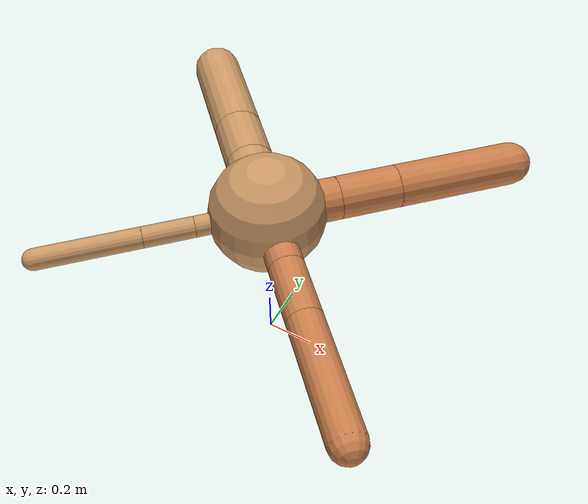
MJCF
<?xml version="1.0" ?>
<mujoco model="ant">

	<compiler angle="degree" coordinate="local" inertiafromgeom="true"/>

	<option integrator="RK4" timestep="0.01"/>

	<custom>

		<numeric data="0.0 0.0 0.55 1.0 0.0 0.0 0.0 0.0 1.0 0.0 -1.0 0.0 -1.0 0.0 1.0" name="init_qpos"/>

	</custom>

	<default>

		<joint armature="1" damping="1" limited="true"/>

		<geom conaffinity="0" condim="3" density="5.0" friction="1.5 0.1 0.1" margin="0.01" rgba="0.8 0.6 0.4 1"/>

	</default>

	<worldbody>

		<body name="torso" pos="0 0 0.75">

			<geom name="torso_geom" pos="0 0 0" size="0.23182200856660018" type="sphere"/>

			<!--joint armature="0" damping="0" limited="false" margin="0.01" name="root" pos="0 0 0" type="free"/-->

			<body name="front_left_leg" pos="0 0 0">

				<geom fromto="0 0 0 0.2 0.2 0" name="aux_1_geom" size="0.0853466730778988" type="capsule" rgba=".8 .5 .3 1"/>

				<body name="aux_1" pos="0.2 0.2 0">

					<joint axis="0 0 1" name="hip_1" pos="0.0 0.0 0.0" range="-40 40" type="hinge"/>

					<geom fromto="0 0 0 0.1712704494403857 0.1712704494403857 0" name="left_leg_geom" size="0.0853466730778988" type="capsule" rgba=".8 .5 .3 1"/>

					<body pos="0.1712704494403857 0.1712704494403857 0" name="front_left_foot">

						<joint axis="-1 1 0" name="ankle_1" pos="0.0 0.0 0.0" range="30 100" type="hinge"/>

						<geom fromto="0 0 0 0.3425408988807714 0.3425408988807714 0" name="left_ankle_geom" size="0.0853466730778988" type="capsule" rgba=".8 .5 .3 1"/>

					</body>

				</body>

			</body>

			<body name="front_right_leg" pos="0 0 0">

				<geom fromto="0 0 0 -0.2 0.2 0" name="aux_2_geom" size="0.09857933956046268" type="capsule"/>

				<body name="aux_2" pos="-0.2 0.2 0">

					<joint axis="0 0 1" name="hip_2" pos="0.0 0.0 0.0" range="-40 40" type="hinge"/>

					<geom fromto="0 0 0 -0.14964240120265168 0.14964240120265168 0" name="right_leg_geom" size="0.09857933956046268" type="capsule"/>

					<body pos="-0.14964240120265168 0.14964240120265168 0" name="front_right_foot">

						<joint axis="1 1 0" name="ankle_2" pos="0.0 0.0 0.0" range="-100 -30" type="hinge"/>

						<geom fromto="0 0 0 -0.29928480240530336 0.29928480240530336 0" name="right_ankle_geom" size="0.09857933956046268" type="capsule"/>

					</body>

				</body>

			</body>

			<body name="left_back_leg" pos="0 0 0">

				<geom fromto="0 0 0 -0.2 -0.2 0" name="aux_3_geom" size="0.04165432103916567" type="capsule"/>

				<body name="aux_3" pos="-0.2 -0.2 0">

					<joint axis="0 0 1" name="hip_3" pos="0.0 0.0 0.0" range="-40 40" type="hinge"/>

					<geom fromto="0 0 0 -0.14083120498139448 -0.14083120498139448 0" name="back_leg_geom" size="0.04165432103916567" type="capsule"/>

					<body pos="-0.14083120498139448 -0.14083120498139448 0" name="left_back_foot">

						<joint axis="-1 1 0" name="ankle_3" pos="0.0 0.0 0.0" range="-100 -30" type="hinge"/>

						<geom fromto="0 0 0 -0.28166240996278896 -0.28166240996278896 0" name="third_ankle_geom" size="0.04165432103916567" type="capsule"/>

					</body>

				</body>

			</body>

			<body name="right_back_leg" pos="0 0 0">

				<geom fromto="0 0 0 0.2 -0.2 0" name="aux_4_geom" size="0.06924238170801437" type="capsule" rgba=".8 .5 .3 1"/>

				<body name="aux_4" pos="0.2 -0.2 0">

					<joint axis="0 0 1" name="hip_4" pos="0.0 0.0 0.0" range="-40 40" type="hinge"/>

					<geom fromto="0 0 0 0.1678819753013397 -0.1678819753013397 0" name="rightback_leg_geom" size="0.06924238170801437" type="capsule" rgba=".8 .5 .3 1"/>

					<body pos="0.1678819753013397 -0.1678819753013397 0" name="right_back_foot">

						<joint axis="1 1 0" name="ankle_4" pos="0.0 0.0 0.0" range="30 100" type="hinge"/>

						<geom fromto="0 0 0 0.3357639506026794 -0.3357639506026794 0" name="fourth_ankle_geom" size="0.06924238170801437" type="capsule" rgba=".8 .5 .3 1"/>

					</body>

				</body>

			</body>

		</body>

	</worldbody>

	<actuator>

		<motor ctrllimited="true" ctrlrange="-1.0 1.0" joint="hip_4" gear="150"/>

		<motor ctrllimited="true" ctrlrange="-1.0 1.0" joint="ankle_4" gear="150"/>

		<motor ctrllimited="true" ctrlrange="-1.0 1.0" joint="hip_1" gear="150"/>

		<motor ctrllimited="true" ctrlrange="-1.0 1.0" joint="ankle_1" gear="150"/>

		<motor ctrllimited="true" ctrlrange="-1.0 1.0" joint="hip_2" gear="150"/>

		<motor ctrllimited="true" ctrlrange="-1.0 1.0" joint="ankle_2" gear="150"/>

		<motor ctrllimited="true" ctrlrange="-1.0 1.0" joint="hip_3" gear="150"/>

		<motor ctrllimited="true" ctrlrange="-1.0 1.0" joint="ankle_3" gear="150"/>

	</actuator>

</mujoco>
